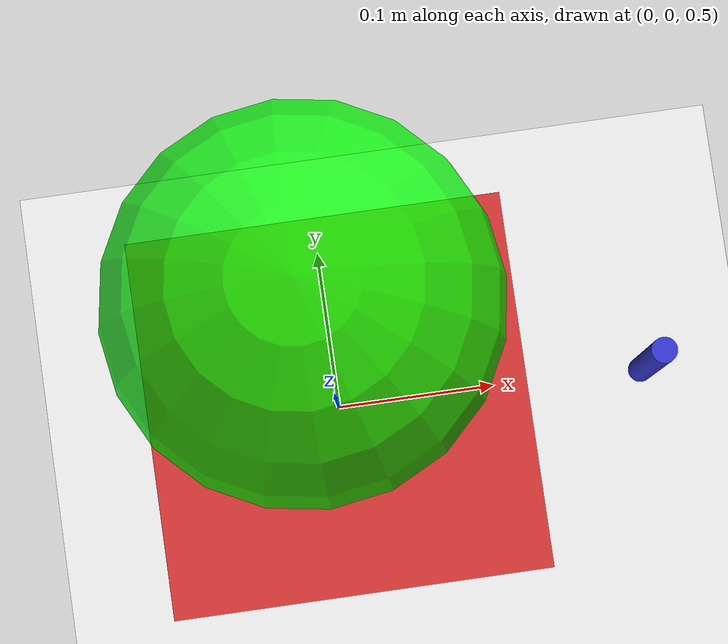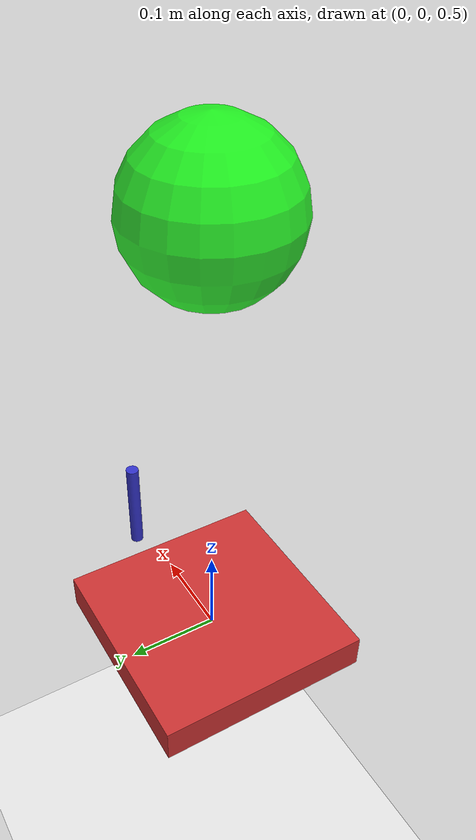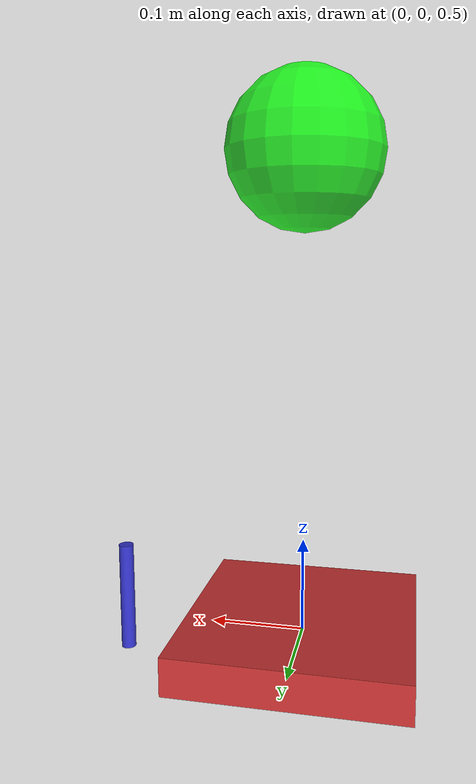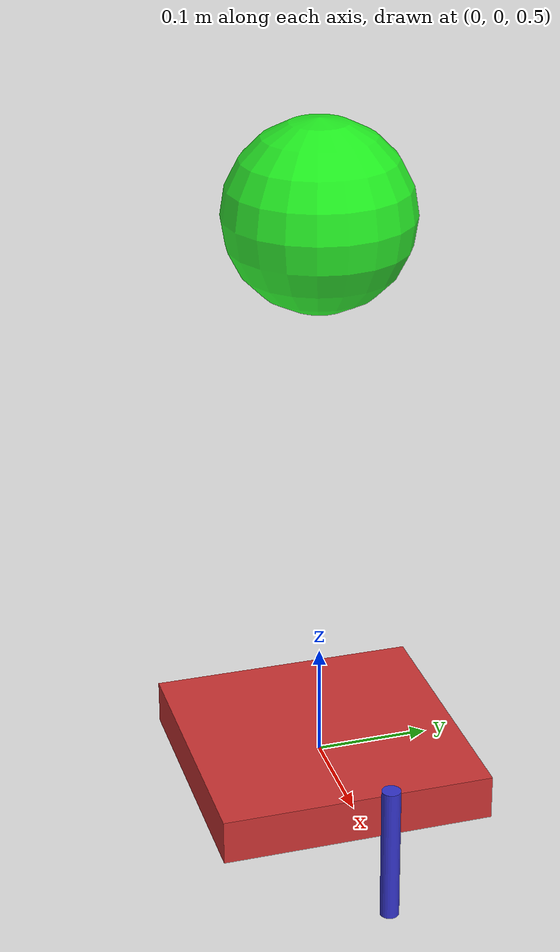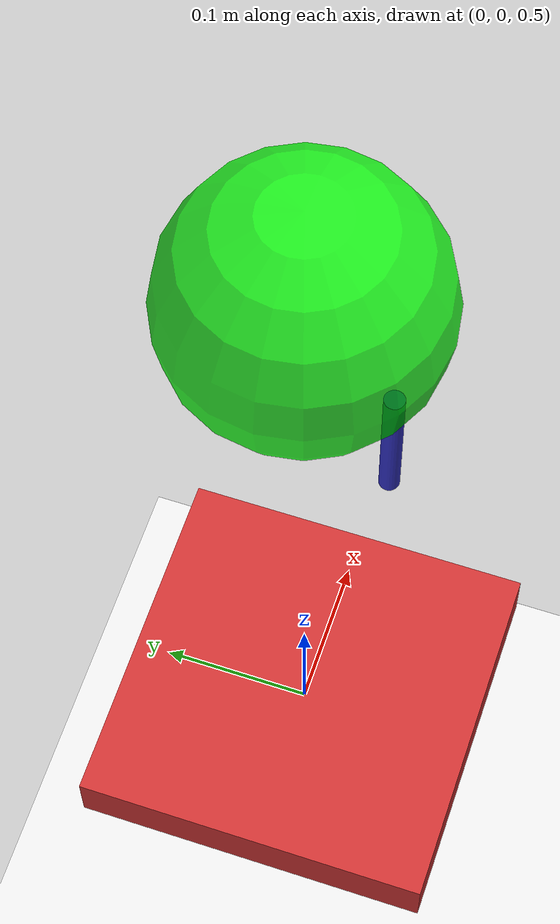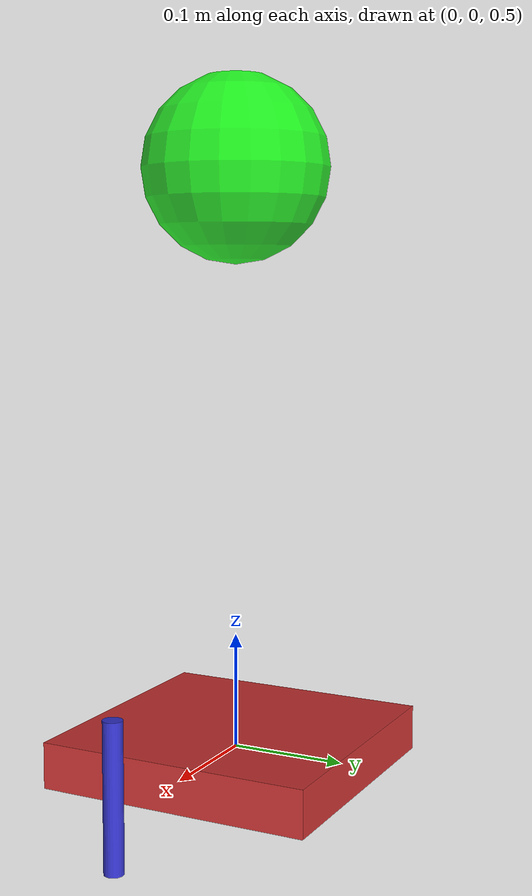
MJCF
<mujoco model="quadrotor">
    <compiler angle="radian" autolimits="true"/>
    <option timestep="0.01"/>

    <worldbody>
        <light diffuse=".5 .5 .5" pos="0 0 3" dir="0 0 -1"/>
        <geom name="floor" type="plane" size="10 10 0.1" rgba="0.9 0.9 0.9 1" contype="0" conaffinity="0"/>
        <body name="quad" pos="0 0 0.5">
            <freejoint name="free"/>
            <inertial pos="0 0 0" mass="1.0" diaginertia="0.01 0.01 0.02"/>
            <!-- Main body: red box -->
            <geom type="box" size="0.12 0.12 0.02" rgba="0.8 0.2 0.2 1"/>
            <!-- Forward direction indicator: small blue arrow (thin cylinder) -->
            <geom type="cylinder" size="0.008 0.06" pos="0.20 0 0.02" rgba="0.2 0.2 0.8 1" euler="0 0 0"/>
        </body>
        <body name="target" pos="0 0 1.0">
            <geom type="sphere" size="0.08" rgba="0.0 1.0 0.0 0.8" contype="0" conaffinity="0"/>
        </body>
    </worldbody>

    <actuator>
        <motor name="m1" joint="free" ctrlrange="-10 10" gear="0 0 0 1 0 0"/>
        <motor name="m2" joint="free" ctrlrange="-10 10" gear="0 0 0 0 1 0"/>
        <motor name="m3" joint="free" ctrlrange="-10 10" gear="0 0 0 0 0 1"/>
        <motor name="m4" joint="free" ctrlrange="0 20" gear="0 0 1 0 0 0"/>
    </actuator>
</mujoco>
